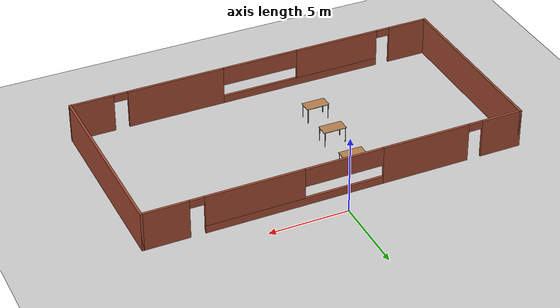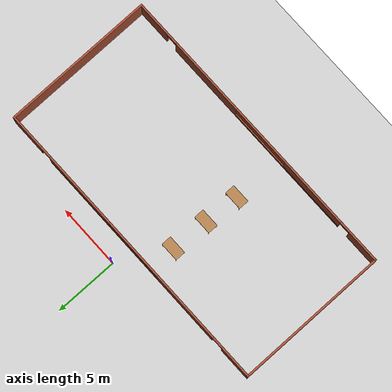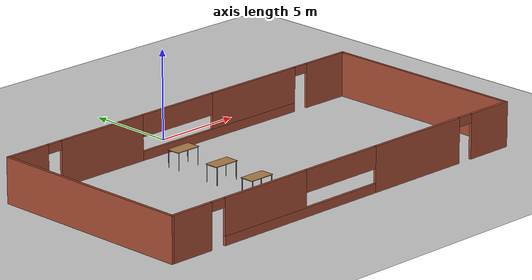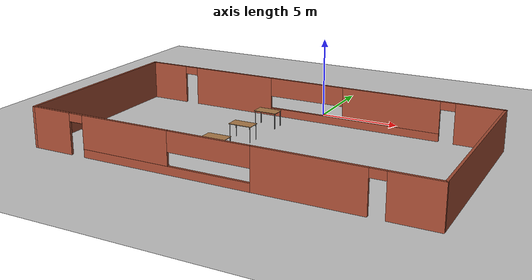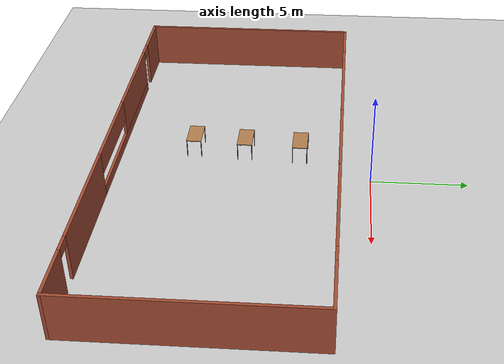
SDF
<sdf version="1.6">
 <world name="default">
  <model name="ground_plane">
   <static>1</static>
   <link name="link">
    <collision name="collision">
     <geometry><plane><normal>0 0 1</normal><size>100 100</size></plane></geometry>
     <surface><friction><ode><mu>100</mu><mu2>50</mu2></ode></friction></surface>
    </collision>
    <visual name="visual">
     <cast_shadows>0</cast_shadows>
     <geometry><plane><normal>0 0 1</normal><size>100 100</size></plane></geometry>
     <material>
      <script><uri>file://media/materials/scripts/gazebo.material</uri><name>Gazebo/Grey</name></script>
     </material>
    </visual>
   </link>
  </model>
  <model name="Building">
   <pose>-0.123507 -7.53127 0 0 -0 0</pose>
   <link name="Wall_19">
    <pose>0 5.925 0 0 -0 0</pose>
    <visual name="Wall_19_Visual_0">
     <pose>-10.7783 0 1.25 0 -0 0</pose>
     <geometry><box><size>2.69331 0.15 2.5</size></box></geometry>
     <material>
      <script><uri>file://media/materials/scripts/gazebo.material</uri><name>Gazebo/Bricks</name></script>
      <ambient>1 1 1 1</ambient>
     </material>
     <meta><layer>0</layer></meta>
    </visual>
    <collision name="Wall_19_Collision_0">
     <geometry><box><size>2.69331 0.15 2.5</size></box></geometry>
     <pose>-10.7783 0 1.25 0 -0 0</pose>
    </collision>
    <visual name="Wall_19_Visual_1">
     <pose>-5.70413 0 1.25 0 -0 0</pose>
     <geometry><box><size>5.65511 0.15 2.5</size></box></geometry>
     <material>
      <script><uri>file://media/materials/scripts/gazebo.material</uri><name>Gazebo/Bricks</name></script>
      <ambient>1 1 1 1</ambient>
     </material>
     <meta><layer>0</layer></meta>
    </visual>
    <collision name="Wall_19_Collision_1">
     <geometry><box><size>5.65511 0.15 2.5</size></box></geometry>
     <pose>-5.70413 0 1.25 0 -0 0</pose>
    </collision>
    <visual name="Wall_19_Visual_2">
     <pose>10.6641 0 1.25 0 -0 0</pose>
     <geometry><box><size>2.92177 0.15 2.5</size></box></geometry>
     <material>
      <script><uri>file://media/materials/scripts/gazebo.material</uri><name>Gazebo/Bricks</name></script>
      <ambient>1 1 1 1</ambient>
     </material>
     <meta><layer>0</layer></meta>
    </visual>
    <collision name="Wall_19_Collision_2">
     <geometry><box><size>2.92177 0.15 2.5</size></box></geometry>
     <pose>10.6641 0 1.25 0 -0 0</pose>
    </collision>
    <visual name="Wall_19_Visual_3">
     <pose>2.71333 0 0.25 0 -0 0</pose>
     <geometry><box><size>11.1798 0.15 0.5</size></box></geometry>
     <material>
      <script><uri>file://media/materials/scripts/gazebo.material</uri><name>Gazebo/Bricks</name></script>
      <ambient>1 1 1 1</ambient>
     </material>
     <meta><layer>0</layer></meta>
    </visual>
    <collision name="Wall_19_Collision_3">
     <geometry><box><size>11.1798 0.15 0.5</size></box></geometry>
     <pose>2.71333 0 0.25 0 -0 0</pose>
    </collision>
    <visual name="Wall_19_Visual_4">
     <pose>5.21333 0 1.5 0 -0 0</pose>
     <geometry><box><size>6.17981 0.15 2</size></box></geometry>
     <material>
      <script><uri>file://media/materials/scripts/gazebo.material</uri><name>Gazebo/Bricks</name></script>
      <ambient>1 1 1 1</ambient>
     </material>
     <meta><layer>0</layer></meta>
    </visual>
    <collision name="Wall_19_Collision_4">
     <geometry><box><size>6.17981 0.15 2</size></box></geometry>
     <pose>5.21333 0 1.5 0 -0 0</pose>
    </collision>
    <visual name="Wall_19_Visual_5">
     <pose>-0.376579 0 1.9 0 -0 0</pose>
     <geometry><box><size>5 0.15 1.2</size></box></geometry>
     <material>
      <script><uri>file://media/materials/scripts/gazebo.material</uri><name>Gazebo/Bricks</name></script>
      <ambient>1 1 1 1</ambient>
     </material>
     <meta><layer>0</layer></meta>
    </visual>
    <collision name="Wall_19_Collision_5">
     <geometry><box><size>5 0.15 1.2</size></box></geometry>
     <pose>-0.376579 0 1.9 0 -0 0</pose>
    </collision>
    <visual name="Wall_19_Visual_6">
     <pose>-8.98169 0 2.25 0 -0 0</pose>
     <geometry><box><size>0.9 0.15 0.5</size></box></geometry>
     <material>
      <script><uri>file://media/materials/scripts/gazebo.material</uri><name>Gazebo/Bricks</name></script>
      <ambient>1 1 1 1</ambient>
     </material>
     <meta><layer>0</layer></meta>
    </visual>
    <collision name="Wall_19_Collision_6">
     <geometry><box><size>0.9 0.15 0.5</size></box></geometry>
     <pose>-8.98169 0 2.25 0 -0 0</pose>
    </collision>
    <visual name="Wall_19_Visual_7">
     <pose>8.75323 0 2.25 0 -0 0</pose>
     <geometry><box><size>0.9 0.15 0.5</size></box></geometry>
     <material>
      <script><uri>file://media/materials/scripts/gazebo.material</uri><name>Gazebo/Bricks</name></script>
      <ambient>1 1 1 1</ambient>
     </material>
     <meta><layer>0</layer></meta>
    </visual>
    <collision name="Wall_19_Collision_7">
     <geometry><box><size>0.9 0.15 0.5</size></box></geometry>
     <pose>8.75323 0 2.25 0 -0 0</pose>
    </collision>
   </link>
   <link name="Wall_20">
    <collision name="Wall_20_Collision">
     <geometry><box><size>12 0.15 2.5</size></box></geometry>
     <pose>0 0 1.25 0 -0 0</pose>
    </collision>
    <visual name="Wall_20_Visual">
     <pose>0 0 1.25 0 -0 0</pose>
     <geometry><box><size>12 0.15 2.5</size></box></geometry>
     <material>
      <script><uri>file://media/materials/scripts/gazebo.material</uri><name>Gazebo/Bricks</name></script>
      <ambient>1 1 1 1</ambient>
     </material>
     <meta><layer>0</layer></meta>
    </visual>
    <pose>12.05 0 0 0 0 -1.5708</pose>
   </link>
   <link name="Wall_21">
    <pose>0 -5.925 0 0 -0 3.14159</pose>
    <visual name="Wall_21_Visual_0">
     <pose>-10.7166 0 1.25 0 -0 0</pose>
     <geometry><box><size>2.81683 0.15 2.5</size></box></geometry>
     <material>
      <script><uri>file://media/materials/scripts/gazebo.material</uri><name>Gazebo/Bricks</name></script>
      <ambient>1 1 1 1</ambient>
     </material>
     <meta><layer>0</layer></meta>
    </visual>
    <collision name="Wall_21_Collision_0">
     <geometry><box><size>2.81683 0.15 2.5</size></box></geometry>
     <pose>-10.7166 0 1.25 0 -0 0</pose>
    </collision>
    <visual name="Wall_21_Visual_1">
     <pose>-5.2658 0 1.25 0 -0 0</pose>
     <geometry><box><size>6.28475 0.15 2.5</size></box></geometry>
     <material>
      <script><uri>file://media/materials/scripts/gazebo.material</uri><name>Gazebo/Bricks</name></script>
      <ambient>1 1 1 1</ambient>
     </material>
     <meta><layer>0</layer></meta>
    </visual>
    <collision name="Wall_21_Collision_1">
     <geometry><box><size>6.28475 0.15 2.5</size></box></geometry>
     <pose>-5.2658 0 1.25 0 -0 0</pose>
    </collision>
    <visual name="Wall_21_Visual_2">
     <pose>10.7783 0 1.25 0 -0 0</pose>
     <geometry><box><size>2.69331 0.15 2.5</size></box></geometry>
     <material>
      <script><uri>file://media/materials/scripts/gazebo.material</uri><name>Gazebo/Bricks</name></script>
      <ambient>1 1 1 1</ambient>
     </material>
     <meta><layer>0</layer></meta>
    </visual>
    <collision name="Wall_21_Collision_2">
     <geometry><box><size>2.69331 0.15 2.5</size></box></geometry>
     <pose>10.7783 0 1.25 0 -0 0</pose>
    </collision>
    <visual name="Wall_21_Visual_3">
     <pose>3.20413 0 0.25 0 -0 0</pose>
     <geometry><box><size>10.6551 0.15 0.5</size></box></geometry>
     <material>
      <script><uri>file://media/materials/scripts/gazebo.material</uri><name>Gazebo/Bricks</name></script>
      <ambient>1 1 1 1</ambient>
     </material>
     <meta><layer>0</layer></meta>
    </visual>
    <collision name="Wall_21_Collision_3">
     <geometry><box><size>10.6551 0.15 0.5</size></box></geometry>
     <pose>3.20413 0 0.25 0 -0 0</pose>
    </collision>
    <visual name="Wall_21_Visual_4">
     <pose>5.70413 0 1.5 0 -0 0</pose>
     <geometry><box><size>5.65511 0.15 2</size></box></geometry>
     <material>
      <script><uri>file://media/materials/scripts/gazebo.material</uri><name>Gazebo/Bricks</name></script>
      <ambient>1 1 1 1</ambient>
     </material>
     <meta><layer>0</layer></meta>
    </visual>
    <collision name="Wall_21_Collision_4">
     <geometry><box><size>5.65511 0.15 2</size></box></geometry>
     <pose>5.70413 0 1.5 0 -0 0</pose>
    </collision>
    <visual name="Wall_21_Visual_5">
     <pose>0.376579 0 1.9 0 -0 0</pose>
     <geometry><box><size>5 0.15 1.2</size></box></geometry>
     <material>
      <script><uri>file://media/materials/scripts/gazebo.material</uri><name>Gazebo/Bricks</name></script>
      <ambient>1 1 1 1</ambient>
     </material>
     <meta><layer>0</layer></meta>
    </visual>
    <collision name="Wall_21_Collision_5">
     <geometry><box><size>5 0.15 1.2</size></box></geometry>
     <pose>0.376579 0 1.9 0 -0 0</pose>
    </collision>
    <visual name="Wall_21_Visual_6">
     <pose>-8.85817 0 2.25 0 -0 0</pose>
     <geometry><box><size>0.9 0.15 0.5</size></box></geometry>
     <material>
      <script><uri>file://media/materials/scripts/gazebo.material</uri><name>Gazebo/Bricks</name></script>
      <ambient>1 1 1 1</ambient>
     </material>
     <meta><layer>0</layer></meta>
    </visual>
    <collision name="Wall_21_Collision_6">
     <geometry><box><size>0.9 0.15 0.5</size></box></geometry>
     <pose>-8.85817 0 2.25 0 -0 0</pose>
    </collision>
    <visual name="Wall_21_Visual_7">
     <pose>8.98169 0 2.25 0 -0 0</pose>
     <geometry><box><size>0.9 0.15 0.5</size></box></geometry>
     <material>
      <script><uri>file://media/materials/scripts/gazebo.material</uri><name>Gazebo/Bricks</name></script>
      <ambient>1 1 1 1</ambient>
     </material>
     <meta><layer>0</layer></meta>
    </visual>
    <collision name="Wall_21_Collision_7">
     <geometry><box><size>0.9 0.15 0.5</size></box></geometry>
     <pose>8.98169 0 2.25 0 -0 0</pose>
    </collision>
   </link>
   <link name="Wall_22">
    <collision name="Wall_22_Collision">
     <geometry><box><size>12 0.15 2.5</size></box></geometry>
     <pose>0 0 1.25 0 -0 0</pose>
    </collision>
    <visual name="Wall_22_Visual">
     <pose>0 0 1.25 0 -0 0</pose>
     <geometry><box><size>12 0.15 2.5</size></box></geometry>
     <material>
      <script><uri>file://media/materials/scripts/gazebo.material</uri><name>Gazebo/Bricks</name></script>
      <ambient>1 1 1 1</ambient>
     </material>
     <meta><layer>0</layer></meta>
    </visual>
    <pose>-12.05 0 0 0 -0 1.5708</pose>
   </link>
   <static>1</static>
  </model>
  <model name="table_clone_clone_0">
   <static>1</static>
   <link name="link">
    <collision name="surface">
     <pose>0 0 1 0 -0 0</pose>
     <geometry><box><size>1.5 0.8 0.03</size></box></geometry>
     <surface><friction><ode><mu>0.6</mu><mu2>0.6</mu2></ode></friction></surface>
    </collision>
    <visual name="visual1">
     <pose>0 0 1 0 -0 0</pose>
     <geometry><box><size>1.5 0.8 0.03</size></box></geometry>
     <material>
      <script><uri>file://media/materials/scripts/gazebo.material</uri><name>Gazebo/Wood</name></script>
     </material>
    </visual>
    <collision name="front_left_leg">
     <pose>0.68 0.38 0.5 0 -0 0</pose>
     <geometry><cylinder><radius>0.02</radius><length>1</length></cylinder></geometry>
    </collision>
    <visual name="front_left_leg">
     <pose>0.68 0.38 0.5 0 -0 0</pose>
     <geometry><cylinder><radius>0.02</radius><length>1</length></cylinder></geometry>
     <material>
      <script><uri>file://media/materials/scripts/gazebo.material</uri><name>Gazebo/Grey</name></script>
     </material>
    </visual>
    <collision name="front_right_leg">
     <pose>0.68 -0.38 0.5 0 -0 0</pose>
     <geometry><cylinder><radius>0.02</radius><length>1</length></cylinder></geometry>
    </collision>
    <visual name="front_right_leg">
     <pose>0.68 -0.38 0.5 0 -0 0</pose>
     <geometry><cylinder><radius>0.02</radius><length>1</length></cylinder></geometry>
     <material>
      <script><uri>file://media/materials/scripts/gazebo.material</uri><name>Gazebo/Grey</name></script>
     </material>
    </visual>
    <collision name="back_right_leg">
     <pose>-0.68 -0.38 0.5 0 -0 0</pose>
     <geometry><cylinder><radius>0.02</radius><length>1</length></cylinder></geometry>
    </collision>
    <visual name="back_right_leg">
     <pose>-0.68 -0.38 0.5 0 -0 0</pose>
     <geometry><cylinder><radius>0.02</radius><length>1</length></cylinder></geometry>
     <material>
      <script><uri>file://media/materials/scripts/gazebo.material</uri><name>Gazebo/Grey</name></script>
     </material>
    </visual>
    <collision name="back_left_leg">
     <pose>-0.68 0.38 0.5 0 -0 0</pose>
     <geometry><cylinder><radius>0.02</radius><length>1</length></cylinder></geometry>
    </collision>
    <visual name="back_left_leg">
     <pose>-0.68 0.38 0.5 0 -0 0</pose>
     <geometry><cylinder><radius>0.02</radius><length>1</length></cylinder></geometry>
     <material>
      <script><uri>file://media/materials/scripts/gazebo.material</uri><name>Gazebo/Grey</name></script>
     </material>
    </visual>
   </link>
   <pose>-2.43738 -9.45721 0 0 -0 0</pose>
  </model>
  <model name="table_clone_clone_1">
   <static>1</static>
   <link name="link">
    <collision name="surface">
     <pose>0 0 1 0 -0 0</pose>
     <geometry><box><size>1.5 0.8 0.03</size></box></geometry>
     <surface><friction><ode><mu>0.6</mu><mu2>0.6</mu2></ode></friction></surface>
    </collision>
    <visual name="visual1">
     <pose>0 0 1 0 -0 0</pose>
     <geometry><box><size>1.5 0.8 0.03</size></box></geometry>
     <material>
      <script><uri>file://media/materials/scripts/gazebo.material</uri><name>Gazebo/Wood</name></script>
     </material>
    </visual>
    <collision name="front_left_leg">
     <pose>0.68 0.38 0.5 0 -0 0</pose>
     <geometry><cylinder><radius>0.02</radius><length>1</length></cylinder></geometry>
    </collision>
    <visual name="front_left_leg">
     <pose>0.68 0.38 0.5 0 -0 0</pose>
     <geometry><cylinder><radius>0.02</radius><length>1</length></cylinder></geometry>
     <material>
      <script><uri>file://media/materials/scripts/gazebo.material</uri><name>Gazebo/Grey</name></script>
     </material>
    </visual>
    <collision name="front_right_leg">
     <pose>0.68 -0.38 0.5 0 -0 0</pose>
     <geometry><cylinder><radius>0.02</radius><length>1</length></cylinder></geometry>
    </collision>
    <visual name="front_right_leg">
     <pose>0.68 -0.38 0.5 0 -0 0</pose>
     <geometry><cylinder><radius>0.02</radius><length>1</length></cylinder></geometry>
     <material>
      <script><uri>file://media/materials/scripts/gazebo.material</uri><name>Gazebo/Grey</name></script>
     </material>
    </visual>
    <collision name="back_right_leg">
     <pose>-0.68 -0.38 0.5 0 -0 0</pose>
     <geometry><cylinder><radius>0.02</radius><length>1</length></cylinder></geometry>
    </collision>
    <visual name="back_right_leg">
     <pose>-0.68 -0.38 0.5 0 -0 0</pose>
     <geometry><cylinder><radius>0.02</radius><length>1</length></cylinder></geometry>
     <material>
      <script><uri>file://media/materials/scripts/gazebo.material</uri><name>Gazebo/Grey</name></script>
     </material>
    </visual>
    <collision name="back_left_leg">
     <pose>-0.68 0.38 0.5 0 -0 0</pose>
     <geometry><cylinder><radius>0.02</radius><length>1</length></cylinder></geometry>
    </collision>
    <visual name="back_left_leg">
     <pose>-0.68 0.38 0.5 0 -0 0</pose>
     <geometry><cylinder><radius>0.02</radius><length>1</length></cylinder></geometry>
     <material>
      <script><uri>file://media/materials/scripts/gazebo.material</uri><name>Gazebo/Grey</name></script>
     </material>
    </visual>
   </link>
   <pose>-2.26026 -6.71884 0 0 -0 0</pose>
  </model>
  <model name="table_clone_clone_2">
   <static>1</static>
   <link name="link">
    <collision name="surface">
     <pose>0 0 1 0 -0 0</pose>
     <geometry><box><size>1.5 0.8 0.03</size></box></geometry>
     <surface><friction><ode><mu>0.6</mu><mu2>0.6</mu2></ode></friction></surface>
    </collision>
    <visual name="visual1">
     <pose>0 0 1 0 -0 0</pose>
     <geometry><box><size>1.5 0.8 0.03</size></box></geometry>
     <material>
      <script><uri>file://media/materials/scripts/gazebo.material</uri><name>Gazebo/Wood</name></script>
     </material>
    </visual>
    <collision name="front_left_leg">
     <pose>0.68 0.38 0.5 0 -0 0</pose>
     <geometry><cylinder><radius>0.02</radius><length>1</length></cylinder></geometry>
    </collision>
    <visual name="front_left_leg">
     <pose>0.68 0.38 0.5 0 -0 0</pose>
     <geometry><cylinder><radius>0.02</radius><length>1</length></cylinder></geometry>
     <material>
      <script><uri>file://media/materials/scripts/gazebo.material</uri><name>Gazebo/Grey</name></script>
     </material>
    </visual>
    <collision name="front_right_leg">
     <pose>0.68 -0.38 0.5 0 -0 0</pose>
     <geometry><cylinder><radius>0.02</radius><length>1</length></cylinder></geometry>
    </collision>
    <visual name="front_right_leg">
     <pose>0.68 -0.38 0.5 0 -0 0</pose>
     <geometry><cylinder><radius>0.02</radius><length>1</length></cylinder></geometry>
     <material>
      <script><uri>file://media/materials/scripts/gazebo.material</uri><name>Gazebo/Grey</name></script>
     </material>
    </visual>
    <collision name="back_right_leg">
     <pose>-0.68 -0.38 0.5 0 -0 0</pose>
     <geometry><cylinder><radius>0.02</radius><length>1</length></cylinder></geometry>
    </collision>
    <visual name="back_right_leg">
     <pose>-0.68 -0.38 0.5 0 -0 0</pose>
     <geometry><cylinder><radius>0.02</radius><length>1</length></cylinder></geometry>
     <material>
      <script><uri>file://media/materials/scripts/gazebo.material</uri><name>Gazebo/Grey</name></script>
     </material>
    </visual>
    <collision name="back_left_leg">
     <pose>-0.68 0.38 0.5 0 -0 0</pose>
     <geometry><cylinder><radius>0.02</radius><length>1</length></cylinder></geometry>
    </collision>
    <visual name="back_left_leg">
     <pose>-0.68 0.38 0.5 0 -0 0</pose>
     <geometry><cylinder><radius>0.02</radius><length>1</length></cylinder></geometry>
     <material>
      <script><uri>file://media/materials/scripts/gazebo.material</uri><name>Gazebo/Grey</name></script>
     </material>
    </visual>
   </link>
   <pose>-2.14162 -3.77176 0.007759 0 -0 0</pose>
  </model>
 </world>
</sdf>
